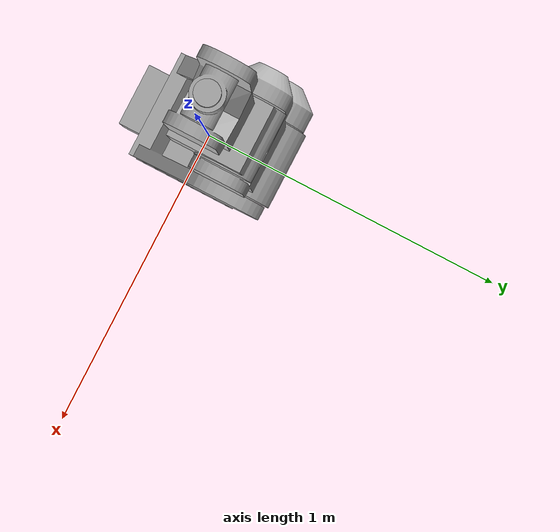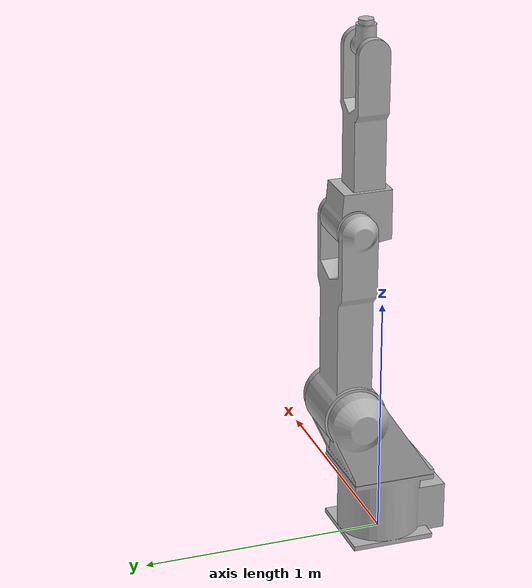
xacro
<?xml version="1.0" ?>

<robot name="FS20N"
	xmlns:xacro="http://ros.org/wiki/xacro">
	<xacro:include filename="$(find kawasaki_description)/urdf/fs20n/fs20n.urdf.xacro" />

	<link name="world"/>

	<xacro:kawasaki_fs20n prefix="" parent="world">
		<origin xyz="0 0 0" rpy="0 0 0" />
	</xacro:kawasaki_fs20n>
</robot>

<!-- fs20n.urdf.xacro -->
<robot xmlns:xacro="http://ros.org/wiki/xacro">

	<xacro:include filename="$(find kawasaki_description)/urdf/materials.urdf.xacro" />
	<xacro:include filename="$(find kawasaki_description)/urdf/fs20n/fs20n.gazebo.xacro" />
	<xacro:include filename="$(find kawasaki_description)/urdf/fs20n/fs20n.transmission.xacro" />

	<xacro:property name="deg2rad" value="0.01745329252" />
	<xacro:property name="speed_limit" value="0.2" />
	<!-- 20% of maximum speed -->
	<xacro:property name="effort" value="100" />

	<xacro:macro name="kawasaki_fs20n" params="prefix parent *origin">

		<joint name="${prefix}base_joint" type="fixed">
			<parent link="${parent}"/>
			<child link="${prefix}base_link"/>
			<insert_block name="origin" />
		</joint>

		<!-- link list -->
		<link name="${prefix}base_link">
			<visual>
				<geometry>
					<mesh filename="package://kawasaki_description/meshes/fs20n/visual/base_link.stl"/>
				</geometry>
				<material name="Kawasaki/LightGrey" />
			</visual>
			<collision>
				<geometry>
					<mesh filename="package://kawasaki_description/meshes/fs20n/collision/base_link.stl"/>
				</geometry>
			</collision>
			<inertial>
				<mass value="0.01" />
				<origin xyz="0 0 0" />
				<inertia ixx="0.001" ixy="0.0" ixz="0.0" iyy="0.001" iyz="0.0" izz="0.001" />
			</inertial>
		</link>
		<link name="${prefix}link_1">
			<visual>
				<geometry>
					<mesh filename="package://kawasaki_description/meshes/fs20n/visual/link_1.stl"/>
				</geometry>
				<material name="Kawasaki/LightGrey"/>
			</visual>
			<collision>
				<geometry>
					<mesh filename="package://kawasaki_description/meshes/fs20n/collision/link_1.stl"/>
				</geometry>
			</collision>
			<inertial>
				<mass value="0.01" />
				<origin xyz="0 0 0" />
				<inertia ixx="0.001" ixy="0.0" ixz="0.0" iyy="0.001" iyz="0.0" izz="0.001" />
			</inertial>
		</link>
		<link name="${prefix}link_2">
			<visual>
				<geometry>
					<mesh filename="package://kawasaki_description/meshes/fs20n/visual/link_2.stl"/>
				</geometry>
				<material name="Kawasaki/LightGrey"/>
			</visual>
			<collision>
				<geometry>
					<mesh filename="package://kawasaki_description/meshes/fs20n/collision/link_2.stl"/>
				</geometry>
			</collision>
			<inertial>
				<mass value="0.01" />
				<origin xyz="0 0 0" />
				<inertia ixx="0.001" ixy="0.0" ixz="0.0" iyy="0.001" iyz="0.0" izz="0.001" />
			</inertial>
		</link>
		<link name="${prefix}link_3">
			<visual>
				<geometry>
					<mesh filename="package://kawasaki_description/meshes/fs20n/visual/link_3.stl"/>
				</geometry>
				<material name="Kawasaki/LightGrey"/>
			</visual>
			<collision>
				<geometry>
					<mesh filename="package://kawasaki_description/meshes/fs20n/collision/link_3.stl"/>
				</geometry>
			</collision>
			<inertial>
				<mass value="0.01" />
				<origin xyz="0 0 0" />
				<inertia ixx="0.001" ixy="0.0" ixz="0.0" iyy="0.001" iyz="0.0" izz="0.001" />
			</inertial>
		</link>
		<link name="${prefix}link_4">
			<visual>
				<geometry>
					<mesh filename="package://kawasaki_description/meshes/fs20n/visual/link_4.stl"/>
				</geometry>
				<origin xyz="0 0 0.0" />
				<material name="Kawasaki/LightGrey"/>
			</visual>
			<collision>
				<geometry>
					<mesh filename="package://kawasaki_description/meshes/fs20n/collision/link_4.stl"/>
				</geometry>
				<origin xyz="0 0 0" />
			</collision>
			<inertial>
				<mass value="0.01" />
				<origin xyz="0 0 0" />
				<inertia ixx="0.001" ixy="0.0" ixz="0.0" iyy="0.001" iyz="0.0" izz="0.001" />
			</inertial>
		</link>
		<link name="${prefix}link_5">
			<visual>
				<geometry>
					<mesh filename="package://kawasaki_description/meshes/fs20n/visual/link_5.stl"/>
				</geometry>
				<material name="Kawasaki/LightGrey"/>
			</visual>
			<collision>
				<geometry>
					<mesh filename="package://kawasaki_description/meshes/fs20n/collision/link_5.stl"/>
				</geometry>
			</collision>
			<inertial>
				<mass value="0.01" />
				<origin xyz="0 0 0" />
				<inertia ixx="0.001" ixy="0.0" ixz="0.0" iyy="0.001" iyz="0.0" izz="0.001" />
			</inertial>
		</link>
		<link name="${prefix}link_6">
			<visual>
				<geometry>
					<mesh filename="package://kawasaki_description/meshes/fs20n/visual/link_6.stl"/>
				</geometry>
				<material name="Kawasaki/LightGrey"/>
			</visual>
			<collision>
				<geometry>
					<mesh filename="package://kawasaki_description/meshes/fs20n/collision/link_6.stl"/>
				</geometry>
			</collision>
			<inertial>
				<mass value="0.01" />
				<origin xyz="0 0 0" />
				<inertia ixx="0.001" ixy="0.0" ixz="0.0" iyy="0.001" iyz="0.0" izz="0.001" />
			</inertial>
		</link>
		<link name="${prefix}tool">
		</link>
		<!-- end of link list -->
		<!-- joint list -->
		<joint name="${prefix}JT1" type="revolute">
			<parent link="${prefix}base_link"/>
			<child link="${prefix}link_1"/>
			<origin xyz="0 0 0.57" rpy="0 0 0" />
			<axis xyz="0 0 -1" />
			<limit lower="${-160 * deg2rad}" upper="${160 * deg2rad}" velocity="${160*speed_limit * deg2rad}" effort="${effort}" />
			<safety_controller soft_lower_limit="${-155 * deg2rad}" soft_upper_limit="${155 * deg2rad}" k_position="20" k_velocity="50" />
			<dynamics damping="10.0" />
		</joint>
		<joint name="${prefix}JT2" type="revolute">
			<parent link="${prefix}link_1"/>
			<child link="${prefix}link_2"/>
			<origin xyz="0 0.15 0" rpy="0 0 0" />
			<axis xyz="-1 0 0" />
			<limit lower="${-105 * deg2rad}" upper="${140 * deg2rad}" velocity="${140*speed_limit * deg2rad}" effort="${effort}" />
			<safety_controller soft_lower_limit="${-100 * deg2rad}" soft_upper_limit="${135 * deg2rad}" k_position="20" k_velocity="50" />
			<dynamics damping="10.0" />
		</joint>
		<joint name="${prefix}JT3" type="revolute">
			<parent link="${prefix}link_2"/>
			<child link="${prefix}link_3"/>
			<origin xyz="0 0 0.8" rpy="0 0 0" />
			<axis xyz="1 0 0" />
			<limit lower="${-155 * deg2rad}" upper="${120 * deg2rad}" velocity="${160*speed_limit * deg2rad}" effort="${effort}" />
			<safety_controller soft_lower_limit="${-150 * deg2rad}" soft_upper_limit="${115 * deg2rad}" k_position="20" k_velocity="50" />
			<dynamics damping="10.0" />
		</joint>
		<joint name="${prefix}JT4" type="revolute">
			<parent link="${prefix}link_3"/>
			<child link="${prefix}link_4"/>
			<origin xyz="0 -0.06 0" rpy="0 0 0" />
			<axis xyz="0 0 1" />
			<limit lower="${-270 * deg2rad}" upper="${89 * deg2rad}" velocity="${330*speed_limit * deg2rad}" effort="${effort}" />
			<safety_controller soft_lower_limit="${-265 * deg2rad}" soft_upper_limit="${265 * deg2rad}" k_position="20" k_velocity="50" />
			<dynamics damping="10.0" />
		</joint>
		<joint name="${prefix}JT5" type="revolute">
			<parent link="${prefix}link_4"/>
			<child link="${prefix}link_5"/>
			<origin xyz="0 0 0.7" rpy="0 0 0" />
			<axis xyz="1 0 0" />
			<limit lower="${-145 * deg2rad}" upper="${145 * deg2rad}" velocity="${330*speed_limit * deg2rad}" effort="${effort}" />
			<safety_controller soft_lower_limit="${-140 * deg2rad}" soft_upper_limit="${140 * deg2rad}" k_position="20" k_velocity="50" />
			<dynamics damping="10.0" />
		</joint>
		<joint name="${prefix}JT6" type="revolute">
			<parent link="${prefix}link_5"/>
			<child link="${prefix}link_6"/>
			<origin xyz="0 0 0.12" rpy="0 0 0" />
			<axis xyz="0 0 1" />
			<limit lower="${-179 * deg2rad}" upper="${180 * deg2rad}" velocity="${500*speed_limit * deg2rad}" effort="${effort}" />
			<safety_controller soft_lower_limit="${-355 * deg2rad}" soft_upper_limit="${355 * deg2rad}" k_position="20" k_velocity="50" />
			<dynamics damping="10.0" />
		</joint>
		<joint name="${prefix}jtool0" type="fixed">
			<parent link="${prefix}link_6"/>
			<child link="${prefix}tool"/>
			<origin xyz="0 0 0" rpy="0 0 0" />
		</joint>
		<!-- end of joint list -->

		<!-- extensions -->
		<xacro:kawasaki_fs20n_gazebo prefix="${prefix}" />
		<xacro:kawasaki_fs20n_transmission prefix="${prefix}" />

	</xacro:macro>
</robot>

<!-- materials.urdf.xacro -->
<robot xmlns:xacro="http://www.ros.org/wiki/xacro">

  <material name="Kawasaki/LightGrey">
    <color rgba="0.7 0.7 0.7 1.0"/>
  </material>

</robot>
